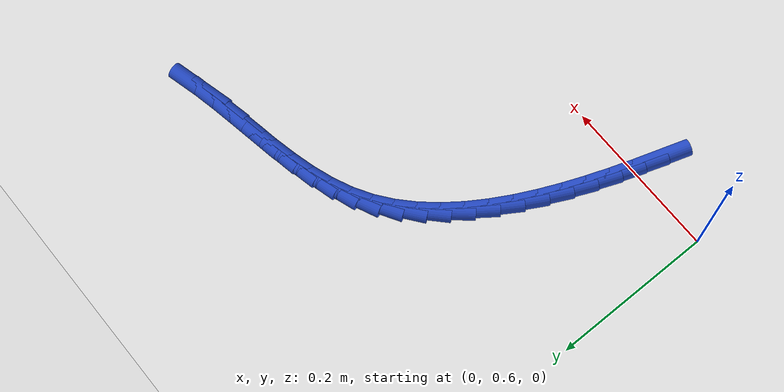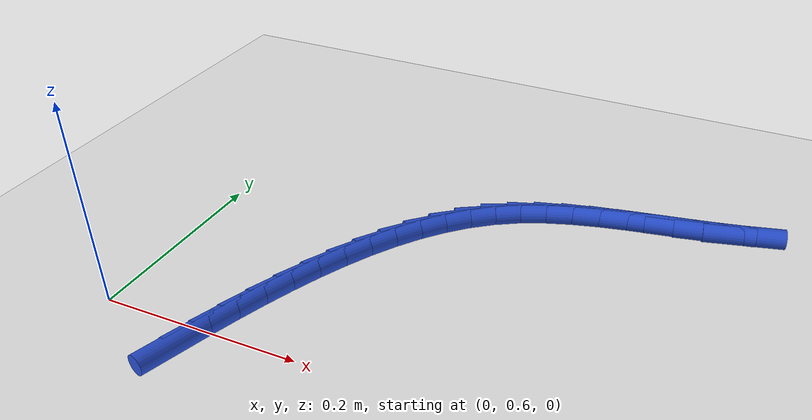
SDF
<sdf version="1.6">
 <world name="default">
  <model name="ground_plane">
   <static>1</static>
   <link name="link">
    <collision name="collision">
     <geometry><plane><normal>0 0 1</normal><size>100 100</size></plane></geometry>
     <surface><friction><ode><mu>100</mu><mu2>50</mu2></ode></friction></surface>
    </collision>
    <visual name="visual">
     <cast_shadows>0</cast_shadows>
     <geometry><plane><normal>0 0 1</normal><size>100 100</size></plane></geometry>
     <material>
      <script><uri>file://media/materials/scripts/gazebo.material</uri><name>Gazebo/WhiteGlow</name></script>
     </material>
    </visual>
   </link>
  </model>
  <model name="line">
   <link name="link_21">
    <pose>0.102451844956058 0.5712236855678947 0.01 0 1.57 1.2589695342895628</pose>
    <collision name="collision">
     <geometry><cylinder><radius>0.01</radius><length>0.08</length></cylinder></geometry>
    </collision>
    <visual name="visual">
     <material>
      <script><name>Gazebo/Blue</name><uri>file://media/materials/scripts/gazebo.material</uri></script>
     </material>
     <geometry><cylinder><radius>0.01</radius><length>0.08</length></cylinder></geometry>
    </visual>
   </link>
   <link name="link_22">
    <pose>0.1112743322635178 0.5985935659038439 0.01 0 1.57 1.2385641871770263</pose>
    <collision name="collision">
     <geometry><cylinder><radius>0.01</radius><length>0.08</length></cylinder></geometry>
    </collision>
    <visual name="visual">
     <material>
      <script><name>Gazebo/Blue</name><uri>file://media/materials/scripts/gazebo.material</uri></script>
     </material>
     <geometry><cylinder><radius>0.01</radius><length>0.08</length></cylinder></geometry>
    </visual>
   </link>
   <link name="link_23">
    <pose>0.12077209039918974 0.6261216398435565 0.01 0 1.57 1.2155396187137706</pose>
    <collision name="collision">
     <geometry><cylinder><radius>0.01</radius><length>0.08</length></cylinder></geometry>
    </collision>
    <visual name="visual">
     <material>
      <script><name>Gazebo/Blue</name><uri>file://media/materials/scripts/gazebo.material</uri></script>
     </material>
     <geometry><cylinder><radius>0.01</radius><length>0.08</length></cylinder></geometry>
    </visual>
   </link>
   <link name="link_24">
    <pose>0.13101173500701827 0.6537219724684015 0.01 0 1.57 1.1869628556771241</pose>
    <collision name="collision">
     <geometry><cylinder><radius>0.01</radius><length>0.08</length></cylinder></geometry>
    </collision>
    <visual name="visual">
     <material>
      <script><name>Gazebo/Blue</name><uri>file://media/materials/scripts/gazebo.material</uri></script>
     </material>
     <geometry><cylinder><radius>0.01</radius><length>0.08</length></cylinder></geometry>
    </visual>
   </link>
   <link name="link_25">
    <pose>0.1420842314485364 0.6811383313500713 0.01 0 1.57 1.1520744912968786</pose>
    <collision name="collision">
     <geometry><cylinder><radius>0.01</radius><length>0.08</length></cylinder></geometry>
    </collision>
    <visual name="visual">
     <material>
      <script><name>Gazebo/Blue</name><uri>file://media/materials/scripts/gazebo.material</uri></script>
     </material>
     <geometry><cylinder><radius>0.01</radius><length>0.08</length></cylinder></geometry>
    </visual>
   </link>
   <link name="link_26">
    <pose>0.15408277313884822 0.7080989014575773 0.01 0 1.57 1.1101632841195617</pose>
    <collision name="collision">
     <geometry><cylinder><radius>0.01</radius><length>0.08</length></cylinder></geometry>
    </collision>
    <visual name="visual">
     <material>
      <script><name>Gazebo/Blue</name><uri>file://media/materials/scripts/gazebo.material</uri></script>
     </material>
     <geometry><cylinder><radius>0.01</radius><length>0.08</length></cylinder></geometry>
    </visual>
   </link>
   <link name="link_27">
    <pose>0.167100553493058 0.7343318677599316 0.01 0 1.57 1.0603253264188406</pose>
    <collision name="collision">
     <geometry><cylinder><radius>0.01</radius><length>0.08</length></cylinder></geometry>
    </collision>
    <visual name="visual">
     <material>
      <script><name>Gazebo/Blue</name><uri>file://media/materials/scripts/gazebo.material</uri></script>
     </material>
     <geometry><cylinder><radius>0.01</radius><length>0.08</length></cylinder></geometry>
    </visual>
   </link>
   <link name="link_28">
    <pose>0.1812307659262695 0.7595654152261451 0.01 0 1.57 1.0014844021116316</pose>
    <collision name="collision">
     <geometry><cylinder><radius>0.01</radius><length>0.08</length></cylinder></geometry>
    </collision>
    <visual name="visual">
     <material>
      <script><name>Gazebo/Blue</name><uri>file://media/materials/scripts/gazebo.material</uri></script>
     </material>
     <geometry><cylinder><radius>0.01</radius><length>0.08</length></cylinder></geometry>
    </visual>
   </link>
   <link name="link_29">
    <pose>0.19656660385358715 0.7835277288252303 0.01 0 1.57 0.9324474969084013</pose>
    <collision name="collision">
     <geometry><cylinder><radius>0.01</radius><length>0.08</length></cylinder></geometry>
    </collision>
    <visual name="visual">
     <material>
      <script><name>Gazebo/Blue</name><uri>file://media/materials/scripts/gazebo.material</uri></script>
     </material>
     <geometry><cylinder><radius>0.01</radius><length>0.08</length></cylinder></geometry>
    </visual>
   </link>
   <link name="link_30">
    <pose>0.21320126069011486 0.805946993526198 0.01 0 1.57 0.8520262955703612</pose>
    <collision name="collision">
     <geometry><cylinder><radius>0.01</radius><length>0.08</length></cylinder></geometry>
    </collision>
    <visual name="visual">
     <material>
      <script><name>Gazebo/Blue</name><uri>file://media/materials/scripts/gazebo.material</uri></script>
     </material>
     <geometry><cylinder><radius>0.01</radius><length>0.08</length></cylinder></geometry>
    </visual>
   </link>
   <link name="link_31">
    <pose>0.23122792985095678 0.8265513942980602 0.01 0 1.57 0.7592625531002527</pose>
    <collision name="collision">
     <geometry><cylinder><radius>0.01</radius><length>0.08</length></cylinder></geometry>
    </collision>
    <visual name="visual">
     <material>
      <script><name>Gazebo/Blue</name><uri>file://media/materials/scripts/gazebo.material</uri></script>
     </material>
     <geometry><cylinder><radius>0.01</radius><length>0.08</length></cylinder></geometry>
    </visual>
   </link>
   <link name="link_32">
    <pose>0.2507398047512168 0.8450691161098283 0.01 0 1.57 0.6537845589047006</pose>
    <collision name="collision">
     <geometry><cylinder><radius>0.01</radius><length>0.08</length></cylinder></geometry>
    </collision>
    <visual name="visual">
     <material>
      <script><name>Gazebo/Blue</name><uri>file://media/materials/scripts/gazebo.material</uri></script>
     </material>
     <geometry><cylinder><radius>0.01</radius><length>0.08</length></cylinder></geometry>
    </visual>
   </link>
   <link name="link_33">
    <pose>0.2718300788059992 0.8612283439305141 0.01 0 1.57 0.5366160289273088</pose>
    <collision name="collision">
     <geometry><cylinder><radius>0.01</radius><length>0.08</length></cylinder></geometry>
    </collision>
    <visual name="visual">
     <material>
      <script><name>Gazebo/Blue</name><uri>file://media/materials/scripts/gazebo.material</uri></script>
     </material>
     <geometry><cylinder><radius>0.01</radius><length>0.08</length></cylinder></geometry>
    </visual>
   </link>
   <link name="link_34">
    <pose>0.29458775367627876 0.8747654972173478 0.01 0 1.57 0.4228962976697133</pose>
    <collision name="collision">
     <geometry><cylinder><radius>0.01</radius><length>0.08</length></cylinder></geometry>
    </collision>
    <visual name="visual">
     <material>
      <script><name>Gazebo/Blue</name><uri>file://media/materials/scripts/gazebo.material</uri></script>
     </material>
     <geometry><cylinder><radius>0.01</radius><length>0.08</length></cylinder></geometry>
    </visual>
   </link>
   <link name="link_35">
    <pose>0.3189439989150365 0.88572704859233 0.01 0 1.57 0.3311181872142504</pose>
    <collision name="collision">
     <geometry><cylinder><radius>0.01</radius><length>0.08</length></cylinder></geometry>
    </collision>
    <visual name="visual">
     <material>
      <script><name>Gazebo/Blue</name><uri>file://media/materials/scripts/gazebo.material</uri></script>
     </material>
     <geometry><cylinder><radius>0.01</radius><length>0.08</length></cylinder></geometry>
    </visual>
   </link>
   <link name="link_36">
    <pose>0.3446278696749388 0.8945565141577766 0.01 0 1.57 0.261984230877892</pose>
    <collision name="collision">
     <geometry><cylinder><radius>0.01</radius><length>0.08</length></cylinder></geometry>
    </collision>
    <visual name="visual">
     <material>
      <script><name>Gazebo/Blue</name><uri>file://media/materials/scripts/gazebo.material</uri></script>
     </material>
     <geometry><cylinder><radius>0.01</radius><length>0.08</length></cylinder></geometry>
    </visual>
   </link>
   <link name="link_37">
    <pose>0.37135520275565187 0.9017233767995259 0.01 0 1.57 0.21400467497509268</pose>
    <collision name="collision">
     <geometry><cylinder><radius>0.01</radius><length>0.08</length></cylinder></geometry>
    </collision>
    <visual name="visual">
     <material>
      <script><name>Gazebo/Blue</name><uri>file://media/materials/scripts/gazebo.material</uri></script>
     </material>
     <geometry><cylinder><radius>0.01</radius><length>0.08</length></cylinder></geometry>
    </visual>
   </link>
   <link name="link_38">
    <pose>0.3988418349568415 0.9076971194034146 0.01 0 1.57 0.18559924164322417</pose>
    <collision name="collision">
     <geometry><cylinder><radius>0.01</radius><length>0.08</length></cylinder></geometry>
    </collision>
    <visual name="visual">
     <material>
      <script><name>Gazebo/Blue</name><uri>file://media/materials/scripts/gazebo.material</uri></script>
     </material>
     <geometry><cylinder><radius>0.01</radius><length>0.08</length></cylinder></geometry>
    </visual>
   </link>
   <link name="link_39">
    <pose>0.4268036030781733 0.9129472248552806 0.01 0 1.57 0.1756303886158419</pose>
    <collision name="collision">
     <geometry><cylinder><radius>0.01</radius><length>0.08</length></cylinder></geometry>
    </collision>
    <visual name="visual">
     <material>
      <script><name>Gazebo/Blue</name><uri>file://media/materials/scripts/gazebo.material</uri></script>
     </material>
     <geometry><cylinder><radius>0.01</radius><length>0.08</length></cylinder></geometry>
    </visual>
   </link>
   <link name="link_40">
    <pose>0.45495634391931283 0.9179431760409612 0.01 0 1.57 0.1836299208196994</pose>
    <collision name="collision">
     <geometry><cylinder><radius>0.01</radius><length>0.08</length></cylinder></geometry>
    </collision>
    <visual name="visual">
     <material>
      <script><name>Gazebo/Blue</name><uri>file://media/materials/scripts/gazebo.material</uri></script>
     </material>
     <geometry><cylinder><radius>0.01</radius><length>0.08</length></cylinder></geometry>
    </visual>
   </link>
   <link name="link_41">
    <pose>0.4830158942799262 0.9231544558462943 0.01 0 1.57 0.2098558817037891</pose>
    <collision name="collision">
     <geometry><cylinder><radius>0.01</radius><length>0.08</length></cylinder></geometry>
    </collision>
    <visual name="visual">
     <material>
      <script><name>Gazebo/Blue</name><uri>file://media/materials/scripts/gazebo.material</uri></script>
     </material>
     <geometry><cylinder><radius>0.01</radius><length>0.08</length></cylinder></geometry>
    </visual>
   </link>
   <link name="link_42">
    <pose>0.5106980971659001 0.9290505376091392 0.01 0 1.57 0.2510692029521865</pose>
    <collision name="collision">
     <geometry><cylinder><radius>0.01</radius><length>0.08</length></cylinder></geometry>
    </collision>
    <visual name="visual">
     <material>
      <script><name>Gazebo/Blue</name><uri>file://media/materials/scripts/gazebo.material</uri></script>
     </material>
     <geometry><cylinder><radius>0.01</radius><length>0.08</length></cylinder></geometry>
    </visual>
   </link>
  </model>
 </world>
</sdf>
